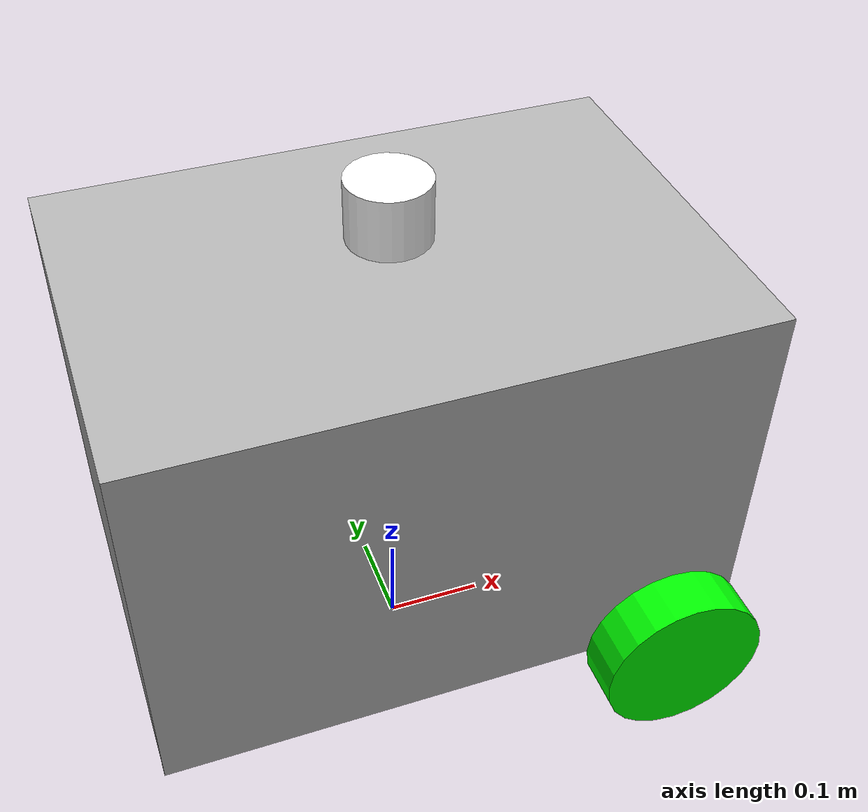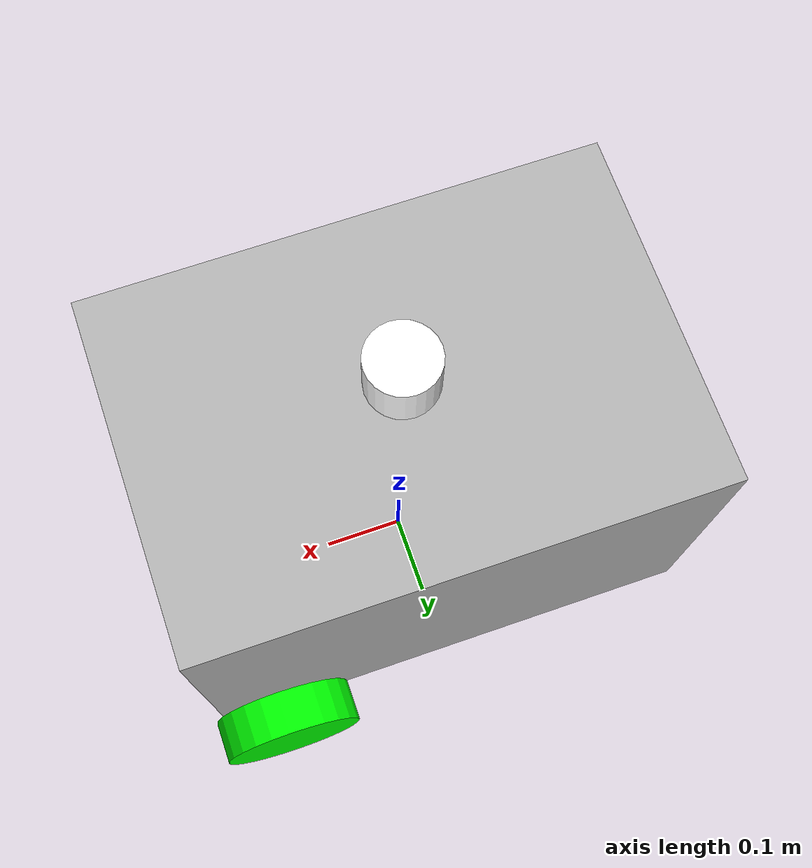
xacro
<?xml version="1.0"?>
<robot xmlns:xacro="http://www.ros.org/wiki/xacro"  name="robot">

    <xacro:arg name="use_ros2_control" default="false"/>
    <xacro:arg name="sim_mode" default="false"/>

    <xacro:include filename="robot_core.xacro" />

    <xacro:if value="$(arg use_ros2_control)">
        <xacro:include filename="ros2_control.xacro" />
    </xacro:if>
    <xacro:unless value="$(arg use_ros2_control)">
        <xacro:include filename="gazebo_control.xacro" />
    </xacro:unless>
    <xacro:include filename="lidar.xacro" />

</robot>

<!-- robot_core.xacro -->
<robot name="my_robot" xmlns:xacro="http://www.ros.org/wiki/xacro">

  <xacro:include filename="inertial_macros.xacro" />

  <material name="grey">
    <color rgba="0.7 0.7 0.7 1" />
  </material>
  <material name="white">
    <color rgba="1 1 1 1" />
  </material>
  <material name="green">
    <color rgba="0 1 0 1" />
  </material>
  <material name="blue">
    <color rgba="0 0 1 1" />
  </material>

  <link name="base_footprint"/>

  <link name="base_link">
    <visual>
      <geometry>
        <box size="0.58 0.4 0.38" />
      </geometry>
      <origin xyz="0 0 0.19" rpy="0 0 0" />
      <material name="grey" />
    </visual>
    <collision>
      <origin xyz="0.29 0 0.19" rpy="0 0 0" />
      <geometry>
        <box size="0.58 0.4 0.38" />
      </geometry>
    </collision>
    <xacro:inertial_box mass="8" x="0.58" y="0.4" z="0.38">
      <origin xyz="0.29 0 0.19" rpy="0 0 0"/>
    </xacro:inertial_box>
  </link>

  <link name="left_wheel">
    <visual>
      <geometry>
        <cylinder radius="0.083" length="0.05" />
      </geometry>
      <origin xyz="0 0 0" rpy="1.57 0 0" />
      <material name="green" />
    </visual>
    <collision>
      <geometry>
        <sphere radius="0.083"/>
      </geometry>
      <origin xyz="0 0 0" rpy="1.57 0 0" />
    </collision>
    <xacro:inertial_cylinder mass="2" length="0.05" radius="0.083">
      <origin xyz="0 0 0" rpy="1.57 0 0"/>
    </xacro:inertial_cylinder>
  </link>

  <link name="right_wheel">
    <visual>
      <geometry>
        <cylinder radius="0.083" length="0.05" />
      </geometry>
      <origin xyz="0 0 0" rpy="1.57 0 0" />
      <material name="green" />
    </visual>
    <collision>
      <geometry>
        <sphere radius="0.083"/>
      </geometry>
      <origin xyz="0 0 0" rpy="1.57 0 0" />
    </collision>
    <xacro:inertial_cylinder mass="2" length="0.05" radius="0.083">
      <origin xyz="0 0 0" rpy="1.57 0 0"/>
    </xacro:inertial_cylinder>
  </link>

  <link name="caster_wheel">
    <visual>
      <geometry>
        <sphere radius="0.04" />
      </geometry>
      <origin xyz="0 0 0" rpy="1.57 0 0" />
      <material name="green" />
    </visual>
    <collision>
      <geometry>
        <sphere radius="0.04"/>
      </geometry>
      <origin xyz="0 0 0" rpy="0 0 0" />
    </collision>
    <xacro:inertial_cylinder mass="1" length="0.05" radius="0.04">
      <origin xyz="0 0 0" rpy="0 0 0"/>
    </xacro:inertial_cylinder>
  </link>

   <link name="ultrasonic_sensor">
    <visual>
      <geometry>
        <box size = "0.015 0.06 0.04" />
      </geometry>
      <origin xyz="0 0 0" rpy="0 0 0" />
      <material name="blue" />
    </visual>
    <collision>
      <geometry>
        <box size = "0.015 0.06 0.04" />
      </geometry>
      <origin xyz="0 0 0" rpy="0 0 0" />
    </collision>
    <xacro:inertial_box mass="0.05" x="0.015" y="0.06" z="0.04">
      <origin xyz="0 0 0" rpy="0 0 0"/>
    </xacro:inertial_box>
  </link>

  <joint name="base_joint" type="fixed">
    <parent link="base_footprint"/>
    <child link="base_link" />
    <origin xyz="0 0 0.108" rpy="0 0 0" />
  </joint>

  <joint name="ultrasonic_sensor_joint" type="fixed">
    <parent link="base_link"/>
    <child link="ultrasonic_sensor" />
    <origin xyz="0.3 0 0.03" rpy="0 0 0" />
  </joint>

  <joint name="left_wheel_joint" type="continuous">
    <parent link="base_link"/>
    <child link="left_wheel"/>
    <origin xyz="0.22 0.225 0" rpy="0 0 0" />
    <axis xyz="0 1 0" />
  </joint>

  <joint name="right_wheel_joint" type="continuous">
    <parent link="base_link"/>
    <child link="right_wheel"/>
    <origin xyz="0.22 -0.225 0" rpy="0 0 0" />
    <axis xyz="0 1 0" />
  </joint>

  <joint name="caster_wheel_joint" type="fixed">
    <parent link="base_link"/>
    <child link="caster_wheel"/>
    <origin xyz="-0.22 0 -0.08" rpy="0 0 0"/>
  </joint>

</robot>

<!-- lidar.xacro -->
<robot xmlns:xacro="http://www.ros.org/wiki/xacro" >
    <joint name="base_lidar_joint" type="fixed">
		<parent link="base_link" />
		<child link="laser_frame" />
		<origin xyz="0 0 0.43" rpy="0 0 0" />
	</joint>
	<link name="laser_frame">
		<visual>
			<geometry>
				<cylinder radius="0.04" length="0.06" />
			</geometry>
			<origin xyz="0 0 0" rpy="0 0 0" />
			<material name="white" />
		</visual>
        <collision>
            <geometry>
                <cylinder radius="0.04" length="0.06"/>
            </geometry>
        </collision>
        <xacro:inertial_cylinder mass="0.1" length="0.06" radius="0.04">
            <origin xyz="0 0 0" rpy="0 0 0"/>
        </xacro:inertial_cylinder>
    </link>
</robot>
